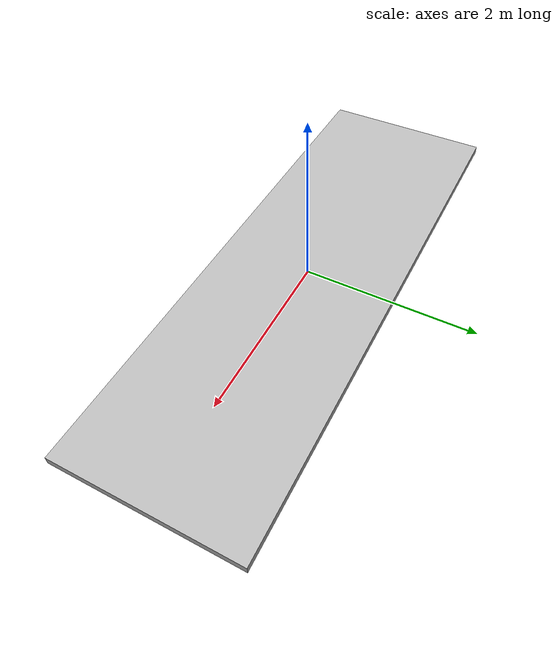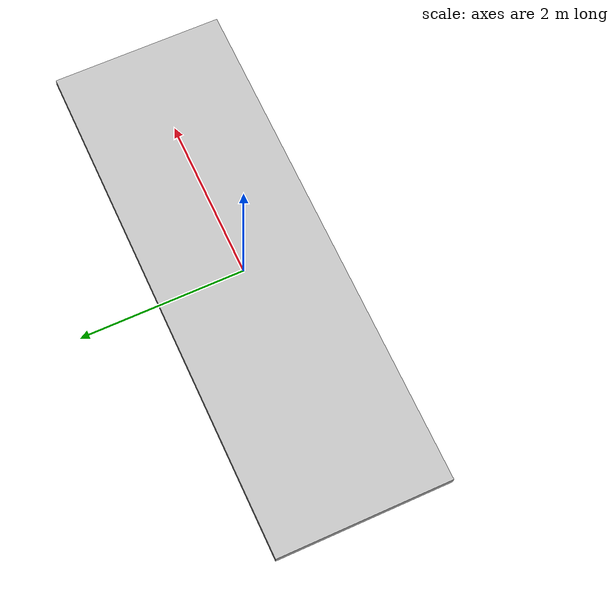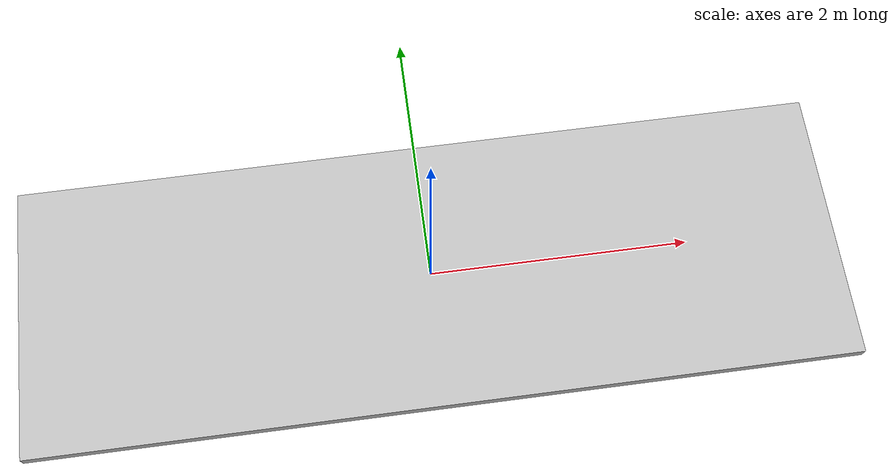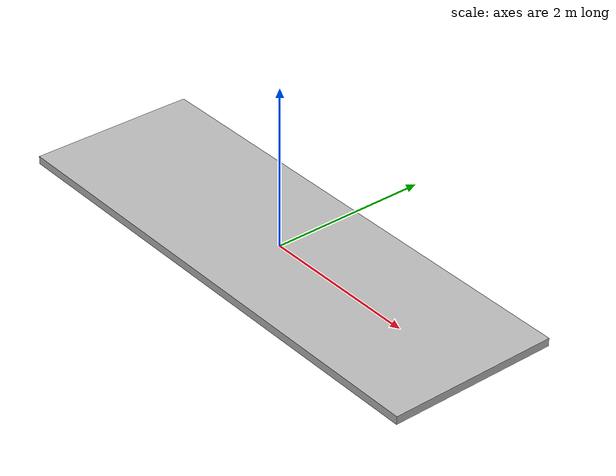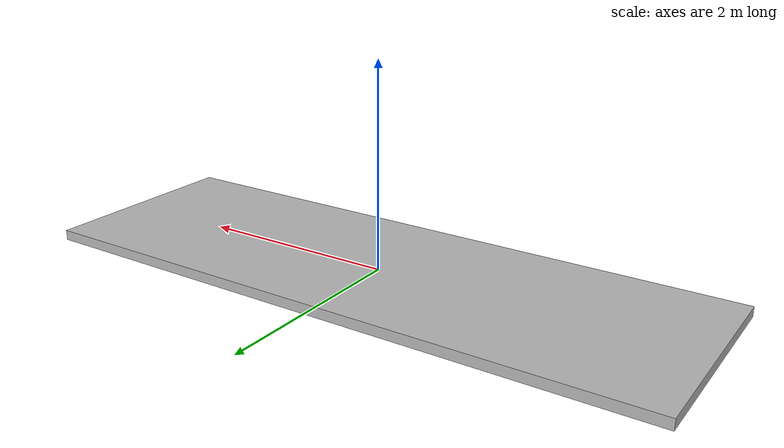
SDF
<?xml version='1.0'?>
<sdf version='1.6'>
  <model name='piscina'>
    <link name='link_0'>
      <pose frame=''>0 0 0 0 0 0</pose>
      <inertial>
        <mass>1</mass>
        <inertia>
          <ixx>0.166667</ixx>
          <ixy>0</ixy>
          <ixz>0</ixz>
          <iyy>0.166667</iyy>
          <iyz>0</iyz>
          <izz>0.166667</izz>
        </inertia>
        <pose frame=''>0 0 0 0 -0 0</pose>
      </inertial>
      <self_collide>0</self_collide>
      <kinematic>0</kinematic>
      <gravity>1</gravity>
      <visual name='visual'>
        <pose frame=''>0 0 0 0 -0 0</pose>
        <geometry>
          <box>
            <size>6.3 2.1 0.1</size>
          </box>
        </geometry>
        <transparency>0</transparency>
        <cast_shadows>1</cast_shadows>
      </visual>
      <collision name='collision'>
        <laser_retro>0</laser_retro>
        <max_contacts>10</max_contacts>
        <pose frame=''>0 0 0 0 -0 0</pose>
        <geometry>
          <box>
            <size>6.3 2.1 0.1</size>
          </box>
        </geometry>
        <surface>
          <friction>
            <ode>
              <mu>1</mu>
              <mu2>1</mu2>
              <fdir1>0 0 0</fdir1>
              <slip1>0</slip1>
              <slip2>0</slip2>
            </ode>
            <torsional>
              <coefficient>1</coefficient>
              <patch_radius>0</patch_radius>
              <surface_radius>0</surface_radius>
              <use_patch_radius>1</use_patch_radius>
              <ode>
                <slip>0</slip>
              </ode>
            </torsional>
          </friction>
          <bounce>
            <restitution_coefficient>0</restitution_coefficient>
            <threshold>1e+06</threshold>
          </bounce>
          <contact>
            <collide_without_contact>0</collide_without_contact>
            <collide_without_contact_bitmask>1</collide_without_contact_bitmask>
            <collide_bitmask>1</collide_bitmask>
            <ode>
              <soft_cfm>0</soft_cfm>
              <soft_erp>0.2</soft_erp>
              <kp>1e+13</kp>
              <kd>1</kd>
              <max_vel>0.01</max_vel>
              <min_depth>0</min_depth>
            </ode>
            <bullet>
              <split_impulse>1</split_impulse>
              <split_impulse_penetration_threshold>-0.01</split_impulse_penetration_threshold>
              <soft_cfm>0</soft_cfm>
              <soft_erp>0.2</soft_erp>
              <kp>1e+13</kp>
              <kd>1</kd>
            </bullet>
          </contact>
        </surface>
      </collision>
            <material>
			<script>
			<uri>model://piscina/materials/scripts</uri>
            <uri>model://piscina/materials/textures</uri>
            <name>BrickBox/Diffuse </name>
            </script>
        </material>
    </link>
    <static>0</static>
    <allow_auto_disable>1</allow_auto_disable>
  </model>
</sdf>
